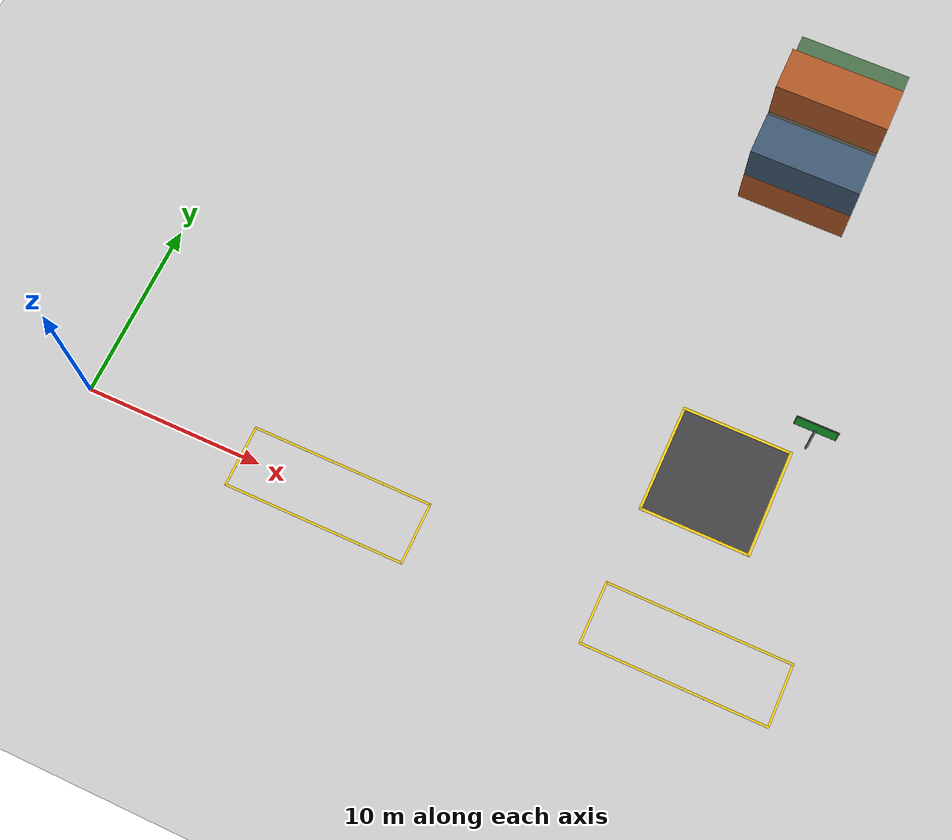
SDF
<sdf version="1.6">
 <world name="default">
  <include><uri>model://ground_plane</uri></include>
  <include><uri>model://sun</uri></include>
  <model name="park_depo">
   <static>true</static>
   <pose>14 0 0 0 0 0</pose>
   <link name="link">
    <visual name="park_0">
     <pose>0 1.7 0.03 0 0 0</pose>
     <geometry><box><size>10.2 0.12 0.004</size></box></geometry>
     <material><ambient>0.95 0.80 0.10 1</ambient><diffuse>0.95 0.80 0.10 1</diffuse></material>
    </visual>
    <visual name="park_1">
     <pose>0 -1.7 0.03 0 0 0</pose>
     <geometry><box><size>10.2 0.12 0.004</size></box></geometry>
     <material><ambient>0.95 0.80 0.10 1</ambient><diffuse>0.95 0.80 0.10 1</diffuse></material>
    </visual>
    <visual name="park_2">
     <pose>5.05 0 0.03 0 0 0</pose>
     <geometry><box><size>0.12 3.4 0.004</size></box></geometry>
     <material><ambient>0.95 0.80 0.10 1</ambient><diffuse>0.95 0.80 0.10 1</diffuse></material>
    </visual>
    <visual name="park_3">
     <pose>-5.05 0 0.03 0 0 0</pose>
     <geometry><box><size>0.12 3.4 0.004</size></box></geometry>
     <material><ambient>0.95 0.80 0.10 1</ambient><diffuse>0.95 0.80 0.10 1</diffuse></material>
    </visual>
   </link>
  </model>
  <model name="alan_sevkiyat">
   <static>true</static>
   <pose>32 9 0 0 0 0</pose>
   <link name="link">
    <visual name="zemin">
     <pose>0 0 0.024 0 0 0</pose>
     <geometry><box><size>6 6 0.006</size></box></geometry>
     <material><ambient>0.26 0.26 0.27 1</ambient><diffuse>0.26 0.26 0.27 1</diffuse></material>
    </visual>
    <visual name="cizgi_0">
     <pose>0 3 0.029 0 0 0</pose>
     <geometry><box><size>6.15 0.15 0.004</size></box></geometry>
     <material><ambient>0.95 0.80 0.10 1</ambient><diffuse>0.95 0.80 0.10 1</diffuse></material>
    </visual>
    <visual name="cizgi_1">
     <pose>0 -3 0.029 0 0 0</pose>
     <geometry><box><size>6.15 0.15 0.004</size></box></geometry>
     <material><ambient>0.95 0.80 0.10 1</ambient><diffuse>0.95 0.80 0.10 1</diffuse></material>
    </visual>
    <visual name="cizgi_2">
     <pose>3 0 0.029 0 0 0</pose>
     <geometry><box><size>0.15 6.15 0.004</size></box></geometry>
     <material><ambient>0.95 0.80 0.10 1</ambient><diffuse>0.95 0.80 0.10 1</diffuse></material>
    </visual>
    <visual name="cizgi_3">
     <pose>-3 0 0.029 0 0 0</pose>
     <geometry><box><size>0.15 6.15 0.004</size></box></geometry>
     <material><ambient>0.95 0.80 0.10 1</ambient><diffuse>0.95 0.80 0.10 1</diffuse></material>
    </visual>
    <visual name="direk">
     <pose>3.6 3.6 1.5 0 0 0</pose>
     <geometry><cylinder><radius>0.07</radius><length>3.0</length></cylinder></geometry>
     <material><ambient>0.40 0.40 0.42 1</ambient><diffuse>0.40 0.40 0.42 1</diffuse></material>
    </visual>
    <visual name="tabela">
     <pose>3.6 3.6 3.2 0 0 0</pose>
     <geometry><box><size>2.2 0.08 1</size></box></geometry>
     <material><ambient>0.10 0.70 0.20 1</ambient><diffuse>0.10 0.70 0.20 1</diffuse></material>
    </visual>
    <visual name="tabela_cerceve">
     <pose>3.6 3.6 3.2 0 0 0</pose>
     <geometry><box><size>2.3 0.06 1.1</size></box></geometry>
     <material><ambient>0.25 0.25 0.27 1</ambient><diffuse>0.25 0.25 0.27 1</diffuse></material>
    </visual>
   </link>
  </model>
  <model name="park_sevkiyat">
   <static>true</static>
   <pose>34 0 0 0 0 0</pose>
   <link name="link">
    <visual name="park_0">
     <pose>0 1.7 0.03 0 0 0</pose>
     <geometry><box><size>10.2 0.12 0.004</size></box></geometry>
     <material><ambient>0.95 0.80 0.10 1</ambient><diffuse>0.95 0.80 0.10 1</diffuse></material>
    </visual>
    <visual name="park_1">
     <pose>0 -1.7 0.03 0 0 0</pose>
     <geometry><box><size>10.2 0.12 0.004</size></box></geometry>
     <material><ambient>0.95 0.80 0.10 1</ambient><diffuse>0.95 0.80 0.10 1</diffuse></material>
    </visual>
    <visual name="park_2">
     <pose>5.05 0 0.03 0 0 0</pose>
     <geometry><box><size>0.12 3.4 0.004</size></box></geometry>
     <material><ambient>0.95 0.80 0.10 1</ambient><diffuse>0.95 0.80 0.10 1</diffuse></material>
    </visual>
    <visual name="park_3">
     <pose>-5.05 0 0.03 0 0 0</pose>
     <geometry><box><size>0.12 3.4 0.004</size></box></geometry>
     <material><ambient>0.95 0.80 0.10 1</ambient><diffuse>0.95 0.80 0.10 1</diffuse></material>
    </visual>
   </link>
  </model>
  <model name="konteynerler_2">
   <static>true</static>
   <pose>30 26 0 0 0 0</pose>
   <link name="link">
    <visual name="k2_0">
     <pose>0 0 1.3 0 0 0</pose>
     <geometry><box><size>6.1 2.44 2.59</size></box></geometry>
     <material><ambient>0.70 0.35 0.15 1</ambient><diffuse>0.70 0.35 0.15 1</diffuse></material>
    </visual>
    <visual name="k2_1">
     <pose>0 0 3.9 0 0 0</pose>
     <geometry><box><size>6.1 2.44 2.59</size></box></geometry>
     <material><ambient>0.25 0.35 0.45 1</ambient><diffuse>0.25 0.35 0.45 1</diffuse></material>
    </visual>
    <visual name="k2_2">
     <pose>0 2.6 1.3 0 0 0</pose>
     <geometry><box><size>6.1 2.44 2.59</size></box></geometry>
     <material><ambient>0.30 0.45 0.30 1</ambient><diffuse>0.30 0.45 0.30 1</diffuse></material>
    </visual>
    <visual name="k2_3">
     <pose>0 2.6 3.9 0 0 0</pose>
     <geometry><box><size>6.1 2.44 2.59</size></box></geometry>
     <material><ambient>0.55 0.50 0.40 1</ambient><diffuse>0.55 0.50 0.40 1</diffuse></material>
    </visual>
    <visual name="k2_4">
     <pose>0 2.6 6.5 0 0 0</pose>
     <geometry><box><size>6.1 2.44 2.59</size></box></geometry>
     <material><ambient>0.70 0.35 0.15 1</ambient><diffuse>0.70 0.35 0.15 1</diffuse></material>
    </visual>
    <visual name="k2_5">
     <pose>0 5.2 1.3 0 0 0</pose>
     <geometry><box><size>6.1 2.44 2.59</size></box></geometry>
     <material><ambient>0.25 0.35 0.45 1</ambient><diffuse>0.25 0.35 0.45 1</diffuse></material>
    </visual>
    <visual name="k2_6">
     <pose>0 5.2 3.9 0 0 0</pose>
     <geometry><box><size>6.1 2.44 2.59</size></box></geometry>
     <material><ambient>0.30 0.45 0.30 1</ambient><diffuse>0.30 0.45 0.30 1</diffuse></material>
    </visual>
   </link>
  </model>
 </world>
</sdf>
